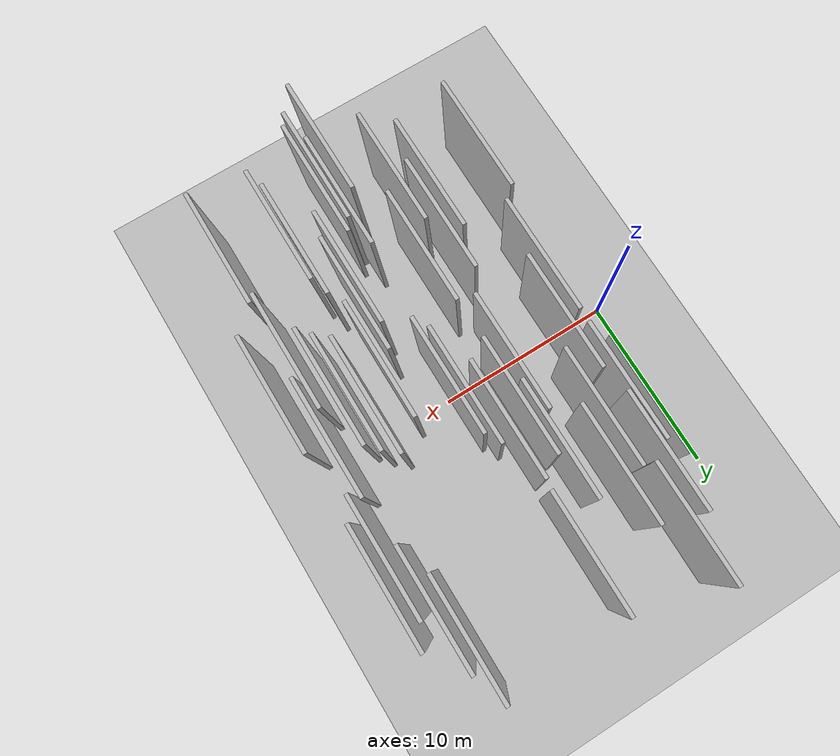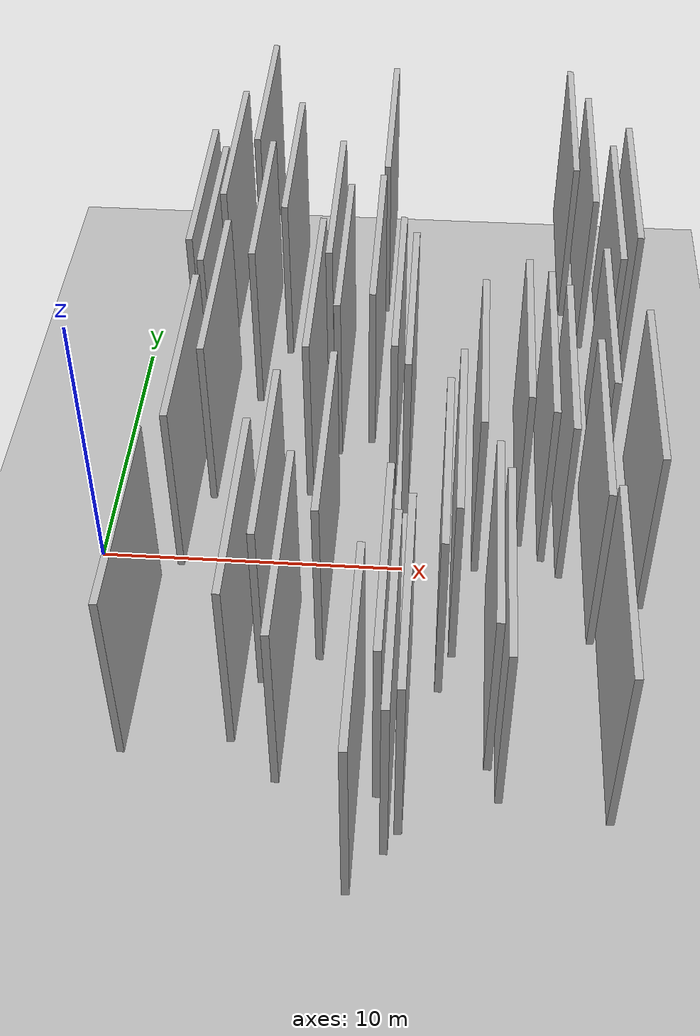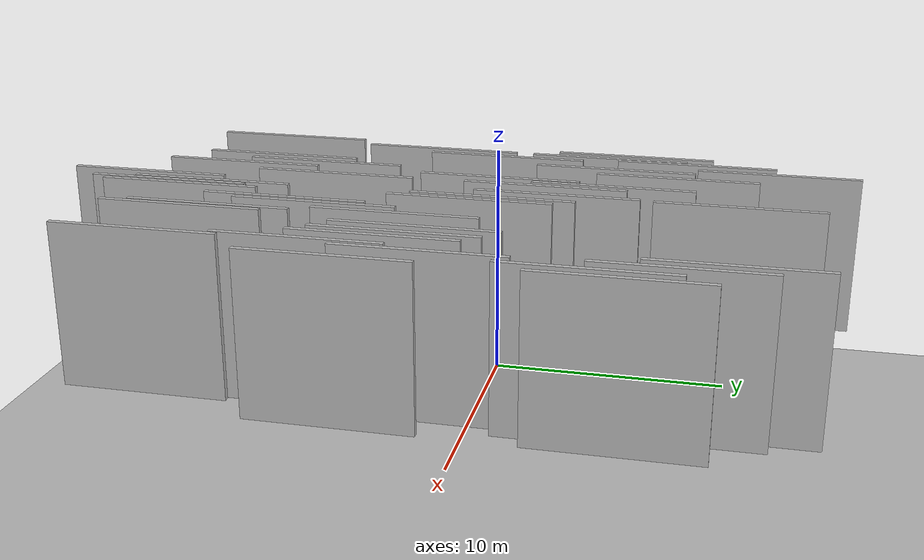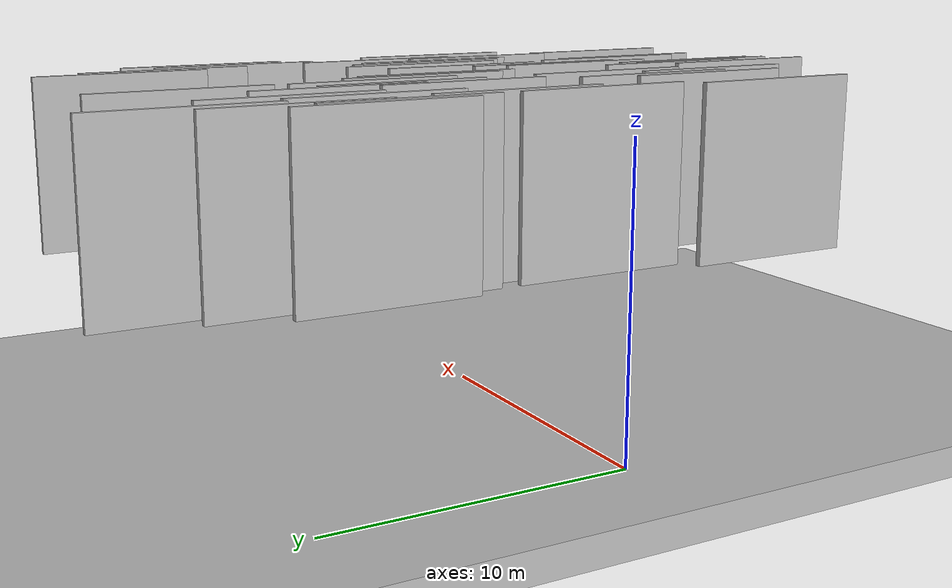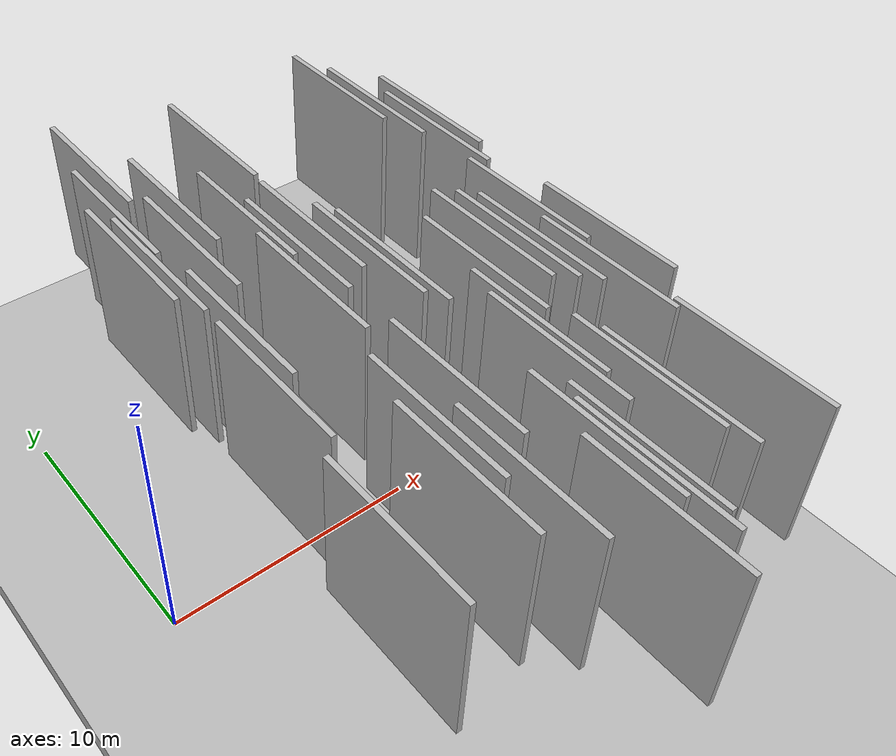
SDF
<?xml version="1.0" encoding="utf-8"?>

<sdf version="1.6">

   <world name="default">

      <gui fullscreen="0">

         <camera name="user_camera">

            <pose>-15 0 4.57585 0 0 0</pose>

            <view_controller>orbit</view_controller>

         </camera>

      </gui>

      <scene>

         <sky>

           <clouds>

             <speed>12</speed>

           </clouds>

         </sky>

         <ambient>0.4 0.4 0.4 1</ambient>

         <background>0.7 0.7 0.7 1</background>

         <shadows>1</shadows>

      </scene>

      <gravity>0 0 -9.8066</gravity>

      <magnetic_field>6e-06 2.3e-05 -4.2e-05</magnetic_field>

      <physics default="0" name="default_physics" type="ode">

         <ode>

            <solver>

               <type>quick</type>

               <iters>10</iters>

               <sor>1.0</sor>

               <use_dynamic_moi_rescaling>0</use_dynamic_moi_rescaling>

            </solver>

            <constraints>

               <cfm>0</cfm>

               <erp>0.2</erp>

               <contact_max_correcting_vel>100</contact_max_correcting_vel>

               <contact_surface_layer>0.001</contact_surface_layer>

            </constraints>

         </ode>

         <max_step_size>0.004</max_step_size>

         <real_time_factor>1</real_time_factor>

         <real_time_update_rate>250</real_time_update_rate>

      </physics>

      <light name="sun" type="directional">

         <cast_shadows>1</cast_shadows>

         <pose>0 0 10 0 0 0</pose>

         <diffuse>0.8 0.8 0.8 1</diffuse>

         <specular>0.2 0.2 0.2 1</specular>

         <attenuation>

            <range>1000</range>

            <constant>0.9</constant>

            <linear>0.01</linear>

            <quadratic>0.001</quadratic>

         </attenuation>

         <direction>-0.5 0.1 -0.9</direction>

      </light>

      <include>

         <name>ground_plane_1</name>

         <uri>model://HANNAS_ground_plane</uri>

         <pose>0 0 0  0 0 0</pose>

      </include>

      <include>

         <name>ground_plane_2</name>

         <uri>model://HANNAS_ground_plane</uri>

         <pose>100 0 0  0 0 0</pose>

      </include>

      <model name="HANNAS_wall_1">

         <static>1</static>

         <pose frame="">14.6508 -1.3126 5.0 0.000000 0.000000 1.570796</pose>

         <link name="link">

            <pose frame="">0 0 3.00 0 0 0</pose>

            <collision name="collision">

               <geometry>

                  <box>

                     <size>6.00 0.2 6.00</size>

                  </box>

               </geometry>

               <max_contacts>10</max_contacts>

               <surface>

                  <contact>

                     <ode/>

                  </contact>

                  <bounce/>

                  <friction>

                     <torsional>

                        <ode/>

                     </torsional>

                     <ode/>

                  </friction>

               </surface>

            </collision>

            <visual name="visual">

               <cast_shadows>0</cast_shadows>

               <geometry>

                  <box>

                     <size>6.00 0.2 6.00</size>

                  </box>

               </geometry>

               <material>

                  <script>

                     <uri>model://HANNAS_wall/materials/scripts</uri>

                     <uri>model://HANNAS_wall/materials/textures</uri>

                     <name>vrc/HANNAS_wall</name>

                  </script>

               </material>

            </visual>

            <self_collide>0</self_collide>

            <enable_wind>0</enable_wind>

            <kinematic>0</kinematic>

         </link>

      </model>

      <model name="HANNAS_wall_2">

         <static>1</static>

         <pose frame="">16.8669 7.0628 5.0 0.000000 0.000000 1.570796</pose>

         <link name="link">

            <pose frame="">0 0 3.00 0 0 0</pose>

            <collision name="collision">

               <geometry>

                  <box>

                     <size>6.00 0.2 6.00</size>

                  </box>

               </geometry>

               <max_contacts>10</max_contacts>

               <surface>

                  <contact>

                     <ode/>

                  </contact>

                  <bounce/>

                  <friction>

                     <torsional>

                        <ode/>

                     </torsional>

                     <ode/>

                  </friction>

               </surface>

            </collision>

            <visual name="visual">

               <cast_shadows>0</cast_shadows>

               <geometry>

                  <box>

                     <size>6.00 0.2 6.00</size>

                  </box>

               </geometry>

               <material>

                  <script>

                     <uri>model://HANNAS_wall/materials/scripts</uri>

                     <uri>model://HANNAS_wall/materials/textures</uri>

                     <name>vrc/HANNAS_wall</name>

                  </script>

               </material>

            </visual>

            <self_collide>0</self_collide>

            <enable_wind>0</enable_wind>

            <kinematic>0</kinematic>

         </link>

      </model>

      <model name="HANNAS_wall_3">

         <static>1</static>

         <pose frame="">9.8406 -8.8659 5.0 0.000000 0.000000 1.570796</pose>

         <link name="link">

            <pose frame="">0 0 3.00 0 0 0</pose>

            <collision name="collision">

               <geometry>

                  <box>

                     <size>6.00 0.2 6.00</size>

                  </box>

               </geometry>

               <max_contacts>10</max_contacts>

               <surface>

                  <contact>

                     <ode/>

                  </contact>

                  <bounce/>

                  <friction>

                     <torsional>

                        <ode/>

                     </torsional>

                     <ode/>

                  </friction>

               </surface>

            </collision>

            <visual name="visual">

               <cast_shadows>0</cast_shadows>

               <geometry>

                  <box>

                     <size>6.00 0.2 6.00</size>

                  </box>

               </geometry>

               <material>

                  <script>

                     <uri>model://HANNAS_wall/materials/scripts</uri>

                     <uri>model://HANNAS_wall/materials/textures</uri>

                     <name>vrc/HANNAS_wall</name>

                  </script>

               </material>

            </visual>

            <self_collide>0</self_collide>

            <enable_wind>0</enable_wind>

            <kinematic>0</kinematic>

         </link>

      </model>

      <model name="HANNAS_wall_4">

         <static>1</static>

         <pose frame="">5.9714 7.9466 5.0 0.000000 0.000000 1.570796</pose>

         <link name="link">

            <pose frame="">0 0 3.00 0 0 0</pose>

            <collision name="collision">

               <geometry>

                  <box>

                     <size>6.00 0.2 6.00</size>

                  </box>

               </geometry>

               <max_contacts>10</max_contacts>

               <surface>

                  <contact>

                     <ode/>

                  </contact>

                  <bounce/>

                  <friction>

                     <torsional>

                        <ode/>

                     </torsional>

                     <ode/>

                  </friction>

               </surface>

            </collision>

            <visual name="visual">

               <cast_shadows>0</cast_shadows>

               <geometry>

                  <box>

                     <size>6.00 0.2 6.00</size>

                  </box>

               </geometry>

               <material>

                  <script>

                     <uri>model://HANNAS_wall/materials/scripts</uri>

                     <uri>model://HANNAS_wall/materials/textures</uri>

                     <name>vrc/HANNAS_wall</name>

                  </script>

               </material>

            </visual>

            <self_collide>0</self_collide>

            <enable_wind>0</enable_wind>

            <kinematic>0</kinematic>

         </link>

      </model>

      <model name="HANNAS_wall_5">

         <static>1</static>

         <pose frame="">7.5330 5.7304 5.0 0.000000 0.000000 1.570796</pose>

         <link name="link">

            <pose frame="">0 0 3.00 0 0 0</pose>

            <collision name="collision">

               <geometry>

                  <box>

                     <size>6.00 0.2 6.00</size>

                  </box>

               </geometry>

               <max_contacts>10</max_contacts>

               <surface>

                  <contact>

                     <ode/>

                  </contact>

                  <bounce/>

                  <friction>

                     <torsional>

                        <ode/>

                     </torsional>

                     <ode/>

                  </friction>

               </surface>

            </collision>

            <visual name="visual">

               <cast_shadows>0</cast_shadows>

               <geometry>

                  <box>

                     <size>6.00 0.2 6.00</size>

                  </box>

               </geometry>

               <material>

                  <script>

                     <uri>model://HANNAS_wall/materials/scripts</uri>

                     <uri>model://HANNAS_wall/materials/textures</uri>

                     <name>vrc/HANNAS_wall</name>

                  </script>

               </material>

            </visual>

            <self_collide>0</self_collide>

            <enable_wind>0</enable_wind>

            <kinematic>0</kinematic>

         </link>

      </model>

      <model name="HANNAS_wall_6">

         <static>1</static>

         <pose frame="">5.2382 5.5553 5.0 0.000000 0.000000 1.570796</pose>

         <link name="link">

            <pose frame="">0 0 3.00 0 0 0</pose>

            <collision name="collision">

               <geometry>

                  <box>

                     <size>6.00 0.2 6.00</size>

                  </box>

               </geometry>

               <max_contacts>10</max_contacts>

               <surface>

                  <contact>

                     <ode/>

                  </contact>

                  <bounce/>

                  <friction>

                     <torsional>

                        <ode/>

                     </torsional>

                     <ode/>

                  </friction>

               </surface>

            </collision>

            <visual name="visual">

               <cast_shadows>0</cast_shadows>

               <geometry>

                  <box>

                     <size>6.00 0.2 6.00</size>

                  </box>

               </geometry>

               <material>

                  <script>

                     <uri>model://HANNAS_wall/materials/scripts</uri>

                     <uri>model://HANNAS_wall/materials/textures</uri>

                     <name>vrc/HANNAS_wall</name>

                  </script>

               </material>

            </visual>

            <self_collide>0</self_collide>

            <enable_wind>0</enable_wind>

            <kinematic>0</kinematic>

         </link>

      </model>

      <model name="HANNAS_wall_7">

         <static>1</static>

         <pose frame="">3.7517 5.1453 5.0 0.000000 0.000000 1.570796</pose>

         <link name="link">

            <pose frame="">0 0 3.00 0 0 0</pose>

            <collision name="collision">

               <geometry>

                  <box>

                     <size>6.00 0.2 6.00</size>

                  </box>

               </geometry>

               <max_contacts>10</max_contacts>

               <surface>

                  <contact>

                     <ode/>

                  </contact>

                  <bounce/>

                  <friction>

                     <torsional>

                        <ode/>

                     </torsional>

                     <ode/>

                  </friction>

               </surface>

            </collision>

            <visual name="visual">

               <cast_shadows>0</cast_shadows>

               <geometry>

                  <box>

                     <size>6.00 0.2 6.00</size>

                  </box>

               </geometry>

               <material>

                  <script>

                     <uri>model://HANNAS_wall/materials/scripts</uri>

                     <uri>model://HANNAS_wall/materials/textures</uri>

                     <name>vrc/HANNAS_wall</name>

                  </script>

               </material>

            </visual>

            <self_collide>0</self_collide>

            <enable_wind>0</enable_wind>

            <kinematic>0</kinematic>

         </link>

      </model>

      <model name="HANNAS_wall_8">

         <static>1</static>

         <pose frame="">4.7043 11.6171 5.0 0.000000 0.000000 1.570796</pose>

         <link name="link">

            <pose frame="">0 0 3.00 0 0 0</pose>

            <collision name="collision">

               <geometry>

                  <box>

                     <size>6.00 0.2 6.00</size>

                  </box>

               </geometry>

               <max_contacts>10</max_contacts>

               <surface>

                  <contact>

                     <ode/>

                  </contact>

                  <bounce/>

                  <friction>

                     <torsional>

                        <ode/>

                     </torsional>

                     <ode/>

                  </friction>

               </surface>

            </collision>

            <visual name="visual">

               <cast_shadows>0</cast_shadows>

               <geometry>

                  <box>

                     <size>6.00 0.2 6.00</size>

                  </box>

               </geometry>

               <material>

                  <script>

                     <uri>model://HANNAS_wall/materials/scripts</uri>

                     <uri>model://HANNAS_wall/materials/textures</uri>

                     <name>vrc/HANNAS_wall</name>

                  </script>

               </material>

            </visual>

            <self_collide>0</self_collide>

            <enable_wind>0</enable_wind>

            <kinematic>0</kinematic>

         </link>

      </model>

      <model name="HANNAS_wall_9">

         <static>1</static>

         <pose frame="">11.3034 -5.5310 5.0 0.000000 0.000000 1.570796</pose>

         <link name="link">

            <pose frame="">0 0 3.00 0 0 0</pose>

            <collision name="collision">

               <geometry>

                  <box>

                     <size>6.00 0.2 6.00</size>

                  </box>

               </geometry>

               <max_contacts>10</max_contacts>

               <surface>

                  <contact>

                     <ode/>

                  </contact>

                  <bounce/>

                  <friction>

                     <torsional>

                        <ode/>

                     </torsional>

                     <ode/>

                  </friction>

               </surface>

            </collision>

            <visual name="visual">

               <cast_shadows>0</cast_shadows>

               <geometry>

                  <box>

                     <size>6.00 0.2 6.00</size>

                  </box>

               </geometry>

               <material>

                  <script>

                     <uri>model://HANNAS_wall/materials/scripts</uri>

                     <uri>model://HANNAS_wall/materials/textures</uri>

                     <name>vrc/HANNAS_wall</name>

                  </script>

               </material>

            </visual>

            <self_collide>0</self_collide>

            <enable_wind>0</enable_wind>

            <kinematic>0</kinematic>

         </link>

      </model>

      <model name="HANNAS_wall_10">

         <static>1</static>

         <pose frame="">9.0481 10.3323 5.0 0.000000 0.000000 1.570796</pose>

         <link name="link">

            <pose frame="">0 0 3.00 0 0 0</pose>

            <collision name="collision">

               <geometry>

                  <box>

                     <size>6.00 0.2 6.00</size>

                  </box>

               </geometry>

               <max_contacts>10</max_contacts>

               <surface>

                  <contact>

                     <ode/>

                  </contact>

                  <bounce/>

                  <friction>

                     <torsional>

                        <ode/>

                     </torsional>

                     <ode/>

                  </friction>

               </surface>

            </collision>

            <visual name="visual">

               <cast_shadows>0</cast_shadows>

               <geometry>

                  <box>

                     <size>6.00 0.2 6.00</size>

                  </box>

               </geometry>

               <material>

                  <script>

                     <uri>model://HANNAS_wall/materials/scripts</uri>

                     <uri>model://HANNAS_wall/materials/textures</uri>

                     <name>vrc/HANNAS_wall</name>

                  </script>

               </material>

            </visual>

            <self_collide>0</self_collide>

            <enable_wind>0</enable_wind>

            <kinematic>0</kinematic>

         </link>

      </model>

      <model name="HANNAS_wall_11">

         <static>1</static>

         <pose frame="">10.1104 -10.4616 5.0 0.000000 0.000000 1.570796</pose>

         <link name="link">

            <pose frame="">0 0 3.00 0 0 0</pose>

            <collision name="collision">

               <geometry>

                  <box>

                     <size>6.00 0.2 6.00</size>

                  </box>

               </geometry>

               <max_contacts>10</max_contacts>

               <surface>

                  <contact>

                     <ode/>

                  </contact>

                  <bounce/>

                  <friction>

                     <torsional>

                        <ode/>

                     </torsional>

                     <ode/>

                  </friction>

               </surface>

            </collision>

            <visual name="visual">

               <cast_shadows>0</cast_shadows>

               <geometry>

                  <box>

                     <size>6.00 0.2 6.00</size>

                  </box>

               </geometry>

               <material>

                  <script>

                     <uri>model://HANNAS_wall/materials/scripts</uri>

                     <uri>model://HANNAS_wall/materials/textures</uri>

                     <name>vrc/HANNAS_wall</name>

                  </script>

               </material>

            </visual>

            <self_collide>0</self_collide>

            <enable_wind>0</enable_wind>

            <kinematic>0</kinematic>

         </link>

      </model>

      <model name="HANNAS_wall_12">

         <static>1</static>

         <pose frame="">12.2276 -1.2199 5.0 0.000000 0.000000 1.570796</pose>

         <link name="link">

            <pose frame="">0 0 3.00 0 0 0</pose>

            <collision name="collision">

               <geometry>

                  <box>

                     <size>6.00 0.2 6.00</size>

                  </box>

               </geometry>

               <max_contacts>10</max_contacts>

               <surface>

                  <contact>

                     <ode/>

                  </contact>

                  <bounce/>

                  <friction>

                     <torsional>

                        <ode/>

                     </torsional>

                     <ode/>

                  </friction>

               </surface>

            </collision>

            <visual name="visual">

               <cast_shadows>0</cast_shadows>

               <geometry>

                  <box>

                     <size>6.00 0.2 6.00</size>

                  </box>

               </geometry>

               <material>

                  <script>

                     <uri>model://HANNAS_wall/materials/scripts</uri>

                     <uri>model://HANNAS_wall/materials/textures</uri>

                     <name>vrc/HANNAS_wall</name>

                  </script>

               </material>

            </visual>

            <self_collide>0</self_collide>

            <enable_wind>0</enable_wind>

            <kinematic>0</kinematic>

         </link>

      </model>

      <model name="HANNAS_wall_13">

         <static>1</static>

         <pose frame="">10.4377 -9.8905 5.0 0.000000 0.000000 1.570796</pose>

         <link name="link">

            <pose frame="">0 0 3.00 0 0 0</pose>

            <collision name="collision">

               <geometry>

                  <box>

                     <size>6.00 0.2 6.00</size>

                  </box>

               </geometry>

               <max_contacts>10</max_contacts>

               <surface>

                  <contact>

                     <ode/>

                  </contact>

                  <bounce/>

                  <friction>

                     <torsional>

                        <ode/>

                     </torsional>

                     <ode/>

                  </friction>

               </surface>

            </collision>

            <visual name="visual">

               <cast_shadows>0</cast_shadows>

               <geometry>

                  <box>

                     <size>6.00 0.2 6.00</size>

                  </box>

               </geometry>

               <material>

                  <script>

                     <uri>model://HANNAS_wall/materials/scripts</uri>

                     <uri>model://HANNAS_wall/materials/textures</uri>

                     <name>vrc/HANNAS_wall</name>

                  </script>

               </material>

            </visual>

            <self_collide>0</self_collide>

            <enable_wind>0</enable_wind>

            <kinematic>0</kinematic>

         </link>

      </model>

      <model name="HANNAS_wall_14">

         <static>1</static>

         <pose frame="">15.6064 8.8356 5.0 0.000000 0.000000 1.570796</pose>

         <link name="link">

            <pose frame="">0 0 3.00 0 0 0</pose>

            <collision name="collision">

               <geometry>

                  <box>

                     <size>6.00 0.2 6.00</size>

                  </box>

               </geometry>

               <max_contacts>10</max_contacts>

               <surface>

                  <contact>

                     <ode/>

                  </contact>

                  <bounce/>

                  <friction>

                     <torsional>

                        <ode/>

                     </torsional>

                     <ode/>

                  </friction>

               </surface>

            </collision>

            <visual name="visual">

               <cast_shadows>0</cast_shadows>

               <geometry>

                  <box>

                     <size>6.00 0.2 6.00</size>

                  </box>

               </geometry>

               <material>

                  <script>

                     <uri>model://HANNAS_wall/materials/scripts</uri>

                     <uri>model://HANNAS_wall/materials/textures</uri>

                     <name>vrc/HANNAS_wall</name>

                  </script>

               </material>

            </visual>

            <self_collide>0</self_collide>

            <enable_wind>0</enable_wind>

            <kinematic>0</kinematic>

         </link>

      </model>

      <model name="HANNAS_wall_15">

         <static>1</static>

         <pose frame="">15.4497 -3.6546 5.0 0.000000 0.000000 1.570796</pose>

         <link name="link">

            <pose frame="">0 0 3.00 0 0 0</pose>

            <collision name="collision">

               <geometry>

                  <box>

                     <size>6.00 0.2 6.00</size>

                  </box>

               </geometry>

               <max_contacts>10</max_contacts>

               <surface>

                  <contact>

                     <ode/>

                  </contact>

                  <bounce/>

                  <friction>

                     <torsional>

                        <ode/>

                     </torsional>

                     <ode/>

                  </friction>

               </surface>

            </collision>

            <visual name="visual">

               <cast_shadows>0</cast_shadows>

               <geometry>

                  <box>

                     <size>6.00 0.2 6.00</size>

                  </box>

               </geometry>

               <material>

                  <script>

                     <uri>model://HANNAS_wall/materials/scripts</uri>

                     <uri>model://HANNAS_wall/materials/textures</uri>

                     <name>vrc/HANNAS_wall</name>

                  </script>

               </material>

            </visual>

            <self_collide>0</self_collide>

            <enable_wind>0</enable_wind>

            <kinematic>0</kinematic>

         </link>

      </model>

      <model name="HANNAS_wall_16">

         <static>1</static>

         <pose frame="">9.2563 -11.5913 5.0 0.000000 0.000000 1.570796</pose>

         <link name="link">

            <pose frame="">0 0 3.00 0 0 0</pose>

            <collision name="collision">

               <geometry>

                  <box>

                     <size>6.00 0.2 6.00</size>

                  </box>

               </geometry>

               <max_contacts>10</max_contacts>

               <surface>

                  <contact>

                     <ode/>

                  </contact>

                  <bounce/>

                  <friction>

                     <torsional>

                        <ode/>

                     </torsional>

                     <ode/>

                  </friction>

               </surface>

            </collision>

            <visual name="visual">

               <cast_shadows>0</cast_shadows>

               <geometry>

                  <box>

                     <size>6.00 0.2 6.00</size>

                  </box>

               </geometry>

               <material>

                  <script>

                     <uri>model://HANNAS_wall/materials/scripts</uri>

                     <uri>model://HANNAS_wall/materials/textures</uri>

                     <name>vrc/HANNAS_wall</name>

                  </script>

               </material>

            </visual>

            <self_collide>0</self_collide>

            <enable_wind>0</enable_wind>

            <kinematic>0</kinematic>

         </link>

      </model>

      <model name="HANNAS_wall_17">

         <static>1</static>

         <pose frame="">15.0598 10.5077 5.0 0.000000 0.000000 1.570796</pose>

         <link name="link">

            <pose frame="">0 0 3.00 0 0 0</pose>

            <collision name="collision">

               <geometry>

                  <box>

                     <size>6.00 0.2 6.00</size>

                  </box>

               </geometry>

               <max_contacts>10</max_contacts>

               <surface>

                  <contact>

                     <ode/>

                  </contact>

                  <bounce/>

                  <friction>

                     <torsional>

                        <ode/>

                     </torsional>

                     <ode/>

                  </friction>

               </surface>

            </collision>

            <visual name="visual">

               <cast_shadows>0</cast_shadows>

               <geometry>

                  <box>

                     <size>6.00 0.2 6.00</size>

                  </box>

               </geometry>

               <material>

                  <script>

                     <uri>model://HANNAS_wall/materials/scripts</uri>

                     <uri>model://HANNAS_wall/materials/textures</uri>

                     <name>vrc/HANNAS_wall</name>

                  </script>

               </material>

            </visual>

            <self_collide>0</self_collide>

            <enable_wind>0</enable_wind>

            <kinematic>0</kinematic>

         </link>

      </model>

      <model name="HANNAS_wall_18">

         <static>1</static>

         <pose frame="">9.7028 1.6760 5.0 0.000000 0.000000 1.570796</pose>

         <link name="link">

            <pose frame="">0 0 3.00 0 0 0</pose>

            <collision name="collision">

               <geometry>

                  <box>

                     <size>6.00 0.2 6.00</size>

                  </box>

               </geometry>

               <max_contacts>10</max_contacts>

               <surface>

                  <contact>

                     <ode/>

                  </contact>

                  <bounce/>

                  <friction>

                     <torsional>

                        <ode/>

                     </torsional>

                     <ode/>

                  </friction>

               </surface>

            </collision>

            <visual name="visual">

               <cast_shadows>0</cast_shadows>

               <geometry>

                  <box>

                     <size>6.00 0.2 6.00</size>

                  </box>

               </geometry>

               <material>

                  <script>

                     <uri>model://HANNAS_wall/materials/scripts</uri>

                     <uri>model://HANNAS_wall/materials/textures</uri>

                     <name>vrc/HANNAS_wall</name>

                  </script>

               </material>

            </visual>

            <self_collide>0</self_collide>

            <enable_wind>0</enable_wind>

            <kinematic>0</kinematic>

         </link>

      </model>

      <model name="HANNAS_wall_19">

         <static>1</static>

         <pose frame="">16.8991 -2.3008 5.0 0.000000 0.000000 1.570796</pose>

         <link name="link">

            <pose frame="">0 0 3.00 0 0 0</pose>

            <collision name="collision">

               <geometry>

                  <box>

                     <size>6.00 0.2 6.00</size>

                  </box>

               </geometry>

               <max_contacts>10</max_contacts>

               <surface>

                  <contact>

                     <ode/>

                  </contact>

                  <bounce/>

                  <friction>

                     <torsional>

                        <ode/>

                     </torsional>

                     <ode/>

                  </friction>

               </surface>

            </collision>

            <visual name="visual">

               <cast_shadows>0</cast_shadows>

               <geometry>

                  <box>

                     <size>6.00 0.2 6.00</size>

                  </box>

               </geometry>

               <material>

                  <script>

                     <uri>model://HANNAS_wall/materials/scripts</uri>

                     <uri>model://HANNAS_wall/materials/textures</uri>

                     <name>vrc/HANNAS_wall</name>

                  </script>

               </material>

            </visual>

            <self_collide>0</self_collide>

            <enable_wind>0</enable_wind>

            <kinematic>0</kinematic>

         </link>

      </model>

      <model name="HANNAS_wall_20">

         <static>1</static>

         <pose frame="">12.6463 -7.8847 5.0 0.000000 0.000000 1.570796</pose>

         <link name="link">

            <pose frame="">0 0 3.00 0 0 0</pose>

            <collision name="collision">

               <geometry>

                  <box>

                     <size>6.00 0.2 6.00</size>

                  </box>

               </geometry>

               <max_contacts>10</max_contacts>

               <surface>

                  <contact>

                     <ode/>

                  </contact>

                  <bounce/>

                  <friction>

                     <torsional>

                        <ode/>

                     </torsional>

                     <ode/>

                  </friction>

               </surface>

            </collision>

            <visual name="visual">

               <cast_shadows>0</cast_shadows>

               <geometry>

                  <box>

                     <size>6.00 0.2 6.00</size>

                  </box>

               </geometry>

               <material>

                  <script>

                     <uri>model://HANNAS_wall/materials/scripts</uri>

                     <uri>model://HANNAS_wall/materials/textures</uri>

                     <name>vrc/HANNAS_wall</name>

                  </script>

               </material>

            </visual>

            <self_collide>0</self_collide>

            <enable_wind>0</enable_wind>

            <kinematic>0</kinematic>

         </link>

      </model>

      <model name="HANNAS_wall_21">

         <static>1</static>

         <pose frame="">3.1263 -7.9421 5.0 0.000000 0.000000 1.570796</pose>

         <link name="link">

            <pose frame="">0 0 3.00 0 0 0</pose>

            <collision name="collision">

               <geometry>

                  <box>

                     <size>6.00 0.2 6.00</size>

                  </box>

               </geometry>

               <max_contacts>10</max_contacts>

               <surface>

                  <contact>

                     <ode/>

                  </contact>

                  <bounce/>

                  <friction>

                     <torsional>

                        <ode/>

                     </torsional>

                     <ode/>

                  </friction>

               </surface>

            </collision>

            <visual name="visual">

               <cast_shadows>0</cast_shadows>

               <geometry>

                  <box>

                     <size>6.00 0.2 6.00</size>

                  </box>

               </geometry>

               <material>

                  <script>

                     <uri>model://HANNAS_wall/materials/scripts</uri>

                     <uri>model://HANNAS_wall/materials/textures</uri>

                     <name>vrc/HANNAS_wall</name>

                  </script>

               </material>

            </visual>

            <self_collide>0</self_collide>

            <enable_wind>0</enable_wind>

            <kinematic>0</kinematic>

         </link>

      </model>

      <model name="HANNAS_wall_22">

         <static>1</static>

         <pose frame="">12.9280 -8.8337 5.0 0.000000 0.000000 1.570796</pose>

         <link name="link">

            <pose frame="">0 0 3.00 0 0 0</pose>

            <collision name="collision">

               <geometry>

                  <box>

                     <size>6.00 0.2 6.00</size>

                  </box>

               </geometry>

               <max_contacts>10</max_contacts>

               <surface>

                  <contact>

                     <ode/>

                  </contact>

                  <bounce/>

                  <friction>

                     <torsional>

                        <ode/>

                     </torsional>

                     <ode/>

                  </friction>

               </surface>

            </collision>

            <visual name="visual">

               <cast_shadows>0</cast_shadows>

               <geometry>

                  <box>

                     <size>6.00 0.2 6.00</size>

                  </box>

               </geometry>

               <material>

                  <script>

                     <uri>model://HANNAS_wall/materials/scripts</uri>

                     <uri>model://HANNAS_wall/materials/textures</uri>

                     <name>vrc/HANNAS_wall</name>

                  </script>

               </material>

            </visual>

            <self_collide>0</self_collide>

            <enable_wind>0</enable_wind>

            <kinematic>0</kinematic>

         </link>

      </model>

      <model name="HANNAS_wall_23">

         <static>1</static>

         <pose frame="">8.9529 3.8747 5.0 0.000000 0.000000 1.570796</pose>

         <link name="link">

            <pose frame="">0 0 3.00 0 0 0</pose>

            <collision name="collision">

               <geometry>

                  <box>

                     <size>6.00 0.2 6.00</size>

                  </box>

               </geometry>

               <max_contacts>10</max_contacts>

               <surface>

                  <contact>

                     <ode/>

                  </contact>

                  <bounce/>

                  <friction>

                     <torsional>

                        <ode/>

                     </torsional>

                     <ode/>

                  </friction>

               </surface>

            </collision>

            <visual name="visual">

               <cast_shadows>0</cast_shadows>

               <geometry>

                  <box>

                     <size>6.00 0.2 6.00</size>

                  </box>

               </geometry>

               <material>

                  <script>

                     <uri>model://HANNAS_wall/materials/scripts</uri>

                     <uri>model://HANNAS_wall/materials/textures</uri>

                     <name>vrc/HANNAS_wall</name>

                  </script>

               </material>

            </visual>

            <self_collide>0</self_collide>

            <enable_wind>0</enable_wind>

            <kinematic>0</kinematic>

         </link>

      </model>

      <model name="HANNAS_wall_24">

         <static>1</static>

         <pose frame="">5.9491 -7.4492 5.0 0.000000 0.000000 1.570796</pose>

         <link name="link">

            <pose frame="">0 0 3.00 0 0 0</pose>

            <collision name="collision">

               <geometry>

                  <box>

                     <size>6.00 0.2 6.00</size>

                  </box>

               </geometry>

               <max_contacts>10</max_contacts>

               <surface>

                  <contact>

                     <ode/>

                  </contact>

                  <bounce/>

                  <friction>

                     <torsional>

                        <ode/>

                     </torsional>

                     <ode/>

                  </friction>

               </surface>

            </collision>

            <visual name="visual">

               <cast_shadows>0</cast_shadows>

               <geometry>

                  <box>

                     <size>6.00 0.2 6.00</size>

                  </box>

               </geometry>

               <material>

                  <script>

                     <uri>model://HANNAS_wall/materials/scripts</uri>

                     <uri>model://HANNAS_wall/materials/textures</uri>

                     <name>vrc/HANNAS_wall</name>

                  </script>

               </material>

            </visual>

            <self_collide>0</self_collide>

            <enable_wind>0</enable_wind>

            <kinematic>0</kinematic>

         </link>

      </model>

      <model name="HANNAS_wall_25">

         <static>1</static>

         <pose frame="">6.5377 -5.5196 5.0 0.000000 0.000000 1.570796</pose>

         <link name="link">

            <pose frame="">0 0 3.00 0 0 0</pose>

            <collision name="collision">

               <geometry>

                  <box>

                     <size>6.00 0.2 6.00</size>

                  </box>

               </geometry>

               <max_contacts>10</max_contacts>

               <surface>

                  <contact>

                     <ode/>

                  </contact>

                  <bounce/>

                  <friction>

                     <torsional>

                        <ode/>

                     </torsional>

                     <ode/>

                  </friction>

               </surface>

            </collision>

            <visual name="visual">

               <cast_shadows>0</cast_shadows>

               <geometry>

                  <box>

                     <size>6.00 0.2 6.00</size>

                  </box>

               </geometry>

               <material>

                  <script>

                     <uri>model://HANNAS_wall/materials/scripts</uri>

                     <uri>model://HANNAS_wall/materials/textures</uri>

                     <name>vrc/HANNAS_wall</name>

                  </script>

               </material>

            </visual>

            <self_collide>0</self_collide>

            <enable_wind>0</enable_wind>

            <kinematic>0</kinematic>

         </link>

      </model>

      <model name="HANNAS_wall_26">

         <static>1</static>

         <pose frame="">7.9653 3.3056 5.0 0.000000 0.000000 1.570796</pose>

         <link name="link">

            <pose frame="">0 0 3.00 0 0 0</pose>

            <collision name="collision">

               <geometry>

                  <box>

                     <size>6.00 0.2 6.00</size>

                  </box>

               </geometry>

               <max_contacts>10</max_contacts>

               <surface>

                  <contact>

                     <ode/>

                  </contact>

                  <bounce/>

                  <friction>

                     <torsional>

                        <ode/>

                     </torsional>

                     <ode/>

                  </friction>

               </surface>

            </collision>

            <visual name="visual">

               <cast_shadows>0</cast_shadows>

               <geometry>

                  <box>

                     <size>6.00 0.2 6.00</size>

                  </box>

               </geometry>

               <material>

                  <script>

                     <uri>model://HANNAS_wall/materials/scripts</uri>

                     <uri>model://HANNAS_wall/materials/textures</uri>

                     <name>vrc/HANNAS_wall</name>

                  </script>

               </material>

            </visual>

            <self_collide>0</self_collide>

            <enable_wind>0</enable_wind>

            <kinematic>0</kinematic>

         </link>

      </model>

      <model name="HANNAS_wall_27">

         <static>1</static>

         <pose frame="">13.4966 -0.1819 5.0 0.000000 0.000000 1.570796</pose>

         <link name="link">

            <pose frame="">0 0 3.00 0 0 0</pose>

            <collision name="collision">

               <geometry>

                  <box>

                     <size>6.00 0.2 6.00</size>

                  </box>

               </geometry>

               <max_contacts>10</max_contacts>

               <surface>

                  <contact>

                     <ode/>

                  </contact>

                  <bounce/>

                  <friction>

                     <torsional>

                        <ode/>

                     </torsional>

                     <ode/>

                  </friction>

               </surface>

            </collision>

            <visual name="visual">

               <cast_shadows>0</cast_shadows>

               <geometry>

                  <box>

                     <size>6.00 0.2 6.00</size>

                  </box>

               </geometry>

               <material>

                  <script>

                     <uri>model://HANNAS_wall/materials/scripts</uri>

                     <uri>model://HANNAS_wall/materials/textures</uri>

                     <name>vrc/HANNAS_wall</name>

                  </script>

               </material>

            </visual>

            <self_collide>0</self_collide>

            <enable_wind>0</enable_wind>

            <kinematic>0</kinematic>

         </link>

      </model>

      <model name="HANNAS_wall_28">

         <static>1</static>

         <pose frame="">11.6434 -4.3331 5.0 0.000000 0.000000 1.570796</pose>

         <link name="link">

            <pose frame="">0 0 3.00 0 0 0</pose>

            <collision name="collision">

               <geometry>

                  <box>

                     <size>6.00 0.2 6.00</size>

                  </box>

               </geometry>

               <max_contacts>10</max_contacts>

               <surface>

                  <contact>

                     <ode/>

                  </contact>

                  <bounce/>

                  <friction>

                     <torsional>

                        <ode/>

                     </torsional>

                     <ode/>

                  </friction>

               </surface>

            </collision>

            <visual name="visual">

               <cast_shadows>0</cast_shadows>

               <geometry>

                  <box>

                     <size>6.00 0.2 6.00</size>

                  </box>

               </geometry>

               <material>

                  <script>

                     <uri>model://HANNAS_wall/materials/scripts</uri>

                     <uri>model://HANNAS_wall/materials/textures</uri>

                     <name>vrc/HANNAS_wall</name>

                  </script>

               </material>

            </visual>

            <self_collide>0</self_collide>

            <enable_wind>0</enable_wind>

            <kinematic>0</kinematic>

         </link>

      </model>

      <model name="HANNAS_wall_29">

         <static>1</static>

         <pose frame="">7.2350 -8.5971 5.0 0.000000 0.000000 1.570796</pose>

         <link name="link">

            <pose frame="">0 0 3.00 0 0 0</pose>

            <collision name="collision">

               <geometry>

                  <box>

                     <size>6.00 0.2 6.00</size>

                  </box>

               </geometry>

               <max_contacts>10</max_contacts>

               <surface>

                  <contact>

                     <ode/>

                  </contact>

                  <bounce/>

                  <friction>

                     <torsional>

                        <ode/>

                     </torsional>

                     <ode/>

                  </friction>

               </surface>

            </collision>

            <visual name="visual">

               <cast_shadows>0</cast_shadows>

               <geometry>

                  <box>

                     <size>6.00 0.2 6.00</size>

                  </box>

               </geometry>

               <material>

                  <script>

                     <uri>model://HANNAS_wall/materials/scripts</uri>

                     <uri>model://HANNAS_wall/materials/textures</uri>

                     <name>vrc/HANNAS_wall</name>

                  </script>

               </material>

            </visual>

            <self_collide>0</self_collide>

            <enable_wind>0</enable_wind>

            <kinematic>0</kinematic>

         </link>

      </model>

      <model name="HANNAS_wall_30">

         <static>1</static>

         <pose frame="">15.7237 -9.2830 5.0 0.000000 0.000000 1.570796</pose>

         <link name="link">

            <pose frame="">0 0 3.00 0 0 0</pose>

            <collision name="collision">

               <geometry>

                  <box>

                     <size>6.00 0.2 6.00</size>

                  </box>

               </geometry>

               <max_contacts>10</max_contacts>

               <surface>

                  <contact>

                     <ode/>

                  </contact>

                  <bounce/>

                  <friction>

                     <torsional>

                        <ode/>

                     </torsional>

                     <ode/>

                  </friction>

               </surface>

            </collision>

            <visual name="visual">

               <cast_shadows>0</cast_shadows>

               <geometry>

                  <box>

                     <size>6.00 0.2 6.00</size>

                  </box>

               </geometry>

               <material>

                  <script>

                     <uri>model://HANNAS_wall/materials/scripts</uri>

                     <uri>model://HANNAS_wall/materials/textures</uri>

                     <name>vrc/HANNAS_wall</name>

                  </script>

               </material>

            </visual>

            <self_collide>0</self_collide>

            <enable_wind>0</enable_wind>

            <kinematic>0</kinematic>

         </link>

      </model>

      <model name="HANNAS_wall_31">

         <static>1</static>

         <pose frame="">10.1138 0.9330 5.0 0.000000 0.000000 1.570796</pose>

         <link name="link">

            <pose frame="">0 0 3.00 0 0 0</pose>

            <collision name="collision">

               <geometry>

                  <box>

                     <size>6.00 0.2 6.00</size>

                  </box>

               </geometry>

               <max_contacts>10</max_contacts>

               <surface>

                  <contact>

                     <ode/>

                  </contact>

                  <bounce/>

                  <friction>

                     <torsional>

                        <ode/>

                     </torsional>

                     <ode/>

                  </friction>

               </surface>

            </collision>

            <visual name="visual">

               <cast_shadows>0</cast_shadows>

               <geometry>

                  <box>

                     <size>6.00 0.2 6.00</size>

                  </box>

               </geometry>

               <material>

                  <script>

                     <uri>model://HANNAS_wall/materials/scripts</uri>

                     <uri>model://HANNAS_wall/materials/textures</uri>

                     <name>vrc/HANNAS_wall</name>

                  </script>

               </material>

            </visual>

            <self_collide>0</self_collide>

            <enable_wind>0</enable_wind>

            <kinematic>0</kinematic>

         </link>

      </model>

      <model name="HANNAS_wall_32">

         <static>1</static>

         <pose frame="">3.7301 -1.5100 5.0 0.000000 0.000000 1.570796</pose>

         <link name="link">

            <pose frame="">0 0 3.00 0 0 0</pose>

            <collision name="collision">

               <geometry>

                  <box>

                     <size>6.00 0.2 6.00</size>

                  </box>

               </geometry>

               <max_contacts>10</max_contacts>

               <surface>

                  <contact>

                     <ode/>

                  </contact>

                  <bounce/>

                  <friction>

                     <torsional>

                        <ode/>

                     </torsional>

                     <ode/>

                  </friction>

               </surface>

            </collision>

            <visual name="visual">

               <cast_shadows>0</cast_shadows>

               <geometry>

                  <box>

                     <size>6.00 0.2 6.00</size>

                  </box>

               </geometry>

               <material>

                  <script>

                     <uri>model://HANNAS_wall/materials/scripts</uri>

                     <uri>model://HANNAS_wall/materials/textures</uri>

                     <name>vrc/HANNAS_wall</name>

                  </script>

               </material>

            </visual>

            <self_collide>0</self_collide>

            <enable_wind>0</enable_wind>

            <kinematic>0</kinematic>

         </link>

      </model>

      <model name="HANNAS_wall_33">

         <static>1</static>

         <pose frame="">8.0347 -4.6547 5.0 0.000000 0.000000 1.570796</pose>

         <link name="link">

            <pose frame="">0 0 3.00 0 0 0</pose>

            <collision name="collision">

               <geometry>

                  <box>

                     <size>6.00 0.2 6.00</size>

                  </box>

               </geometry>

               <max_contacts>10</max_contacts>

               <surface>

                  <contact>

                     <ode/>

                  </contact>

                  <bounce/>

                  <friction>

                     <torsional>

                        <ode/>

                     </torsional>

                     <ode/>

                  </friction>

               </surface>

            </collision>

            <visual name="visual">

               <cast_shadows>0</cast_shadows>

               <geometry>

                  <box>

                     <size>6.00 0.2 6.00</size>

                  </box>

               </geometry>

               <material>

                  <script>

                     <uri>model://HANNAS_wall/materials/scripts</uri>

                     <uri>model://HANNAS_wall/materials/textures</uri>

                     <name>vrc/HANNAS_wall</name>

                  </script>

               </material>

            </visual>

            <self_collide>0</self_collide>

            <enable_wind>0</enable_wind>

            <kinematic>0</kinematic>

         </link>

      </model>

      <model name="HANNAS_wall_34">

         <static>1</static>

         <pose frame="">7.2315 1.4747 5.0 0.000000 0.000000 1.570796</pose>

         <link name="link">

            <pose frame="">0 0 3.00 0 0 0</pose>

            <collision name="collision">

               <geometry>

                  <box>

                     <size>6.00 0.2 6.00</size>

                  </box>

               </geometry>

               <max_contacts>10</max_contacts>

               <surface>

                  <contact>

                     <ode/>

                  </contact>

                  <bounce/>

                  <friction>

                     <torsional>

                        <ode/>

                     </torsional>

                     <ode/>

                  </friction>

               </surface>

            </collision>

            <visual name="visual">

               <cast_shadows>0</cast_shadows>

               <geometry>

                  <box>

                     <size>6.00 0.2 6.00</size>

                  </box>

               </geometry>

               <material>

                  <script>

                     <uri>model://HANNAS_wall/materials/scripts</uri>

                     <uri>model://HANNAS_wall/materials/textures</uri>

                     <name>vrc/HANNAS_wall</name>

                  </script>

               </material>

            </visual>

            <self_collide>0</self_collide>

            <enable_wind>0</enable_wind>

            <kinematic>0</kinematic>

         </link>

      </model>

      <model name="HANNAS_wall_35">

         <static>1</static>

         <pose frame="">14.1454 -0.7212 5.0 0.000000 0.000000 1.570796</pose>

         <link name="link">

            <pose frame="">0 0 3.00 0 0 0</pose>

            <collision name="collision">

               <geometry>

                  <box>

                     <size>6.00 0.2 6.00</size>

                  </box>

               </geometry>

               <max_contacts>10</max_contacts>

               <surface>

                  <contact>

                     <ode/>

                  </contact>

                  <bounce/>

                  <friction>

                     <torsional>

                        <ode/>

                     </torsional>

                     <ode/>

                  </friction>

               </surface>

            </collision>

            <visual name="visual">

               <cast_shadows>0</cast_shadows>

               <geometry>

                  <box>

                     <size>6.00 0.2 6.00</size>

                  </box>

               </geometry>

               <material>

                  <script>

                     <uri>model://HANNAS_wall/materials/scripts</uri>

                     <uri>model://HANNAS_wall/materials/textures</uri>

                     <name>vrc/HANNAS_wall</name>

                  </script>

               </material>

            </visual>

            <self_collide>0</self_collide>

            <enable_wind>0</enable_wind>

            <kinematic>0</kinematic>

         </link>

      </model>

      <model name="HANNAS_wall_36">

         <static>1</static>

         <pose frame="">16.2975 6.0035 5.0 0.000000 0.000000 1.570796</pose>

         <link name="link">

            <pose frame="">0 0 3.00 0 0 0</pose>

            <collision name="collision">

               <geometry>

                  <box>

                     <size>6.00 0.2 6.00</size>

                  </box>

               </geometry>

               <max_contacts>10</max_contacts>

               <surface>

                  <contact>

                     <ode/>

                  </contact>

                  <bounce/>

                  <friction>

                     <torsional>

                        <ode/>

                     </torsional>

                     <ode/>

                  </friction>

               </surface>

            </collision>

            <visual name="visual">

               <cast_shadows>0</cast_shadows>

               <geometry>

                  <box>

                     <size>6.00 0.2 6.00</size>

                  </box>

               </geometry>

               <material>

                  <script>

                     <uri>model://HANNAS_wall/materials/scripts</uri>

                     <uri>model://HANNAS_wall/materials/textures</uri>

                     <name>vrc/HANNAS_wall</name>

                  </script>

               </material>

            </visual>

            <self_collide>0</self_collide>

            <enable_wind>0</enable_wind>

            <kinematic>0</kinematic>

         </link>

      </model>

      <model name="HANNAS_wall_37">

         <static>1</static>

         <pose frame="">3.2741 6.1240 5.0 0.000000 0.000000 1.570796</pose>

         <link name="link">

            <pose frame="">0 0 3.00 0 0 0</pose>

            <collision name="collision">

               <geometry>

                  <box>

                     <size>6.00 0.2 6.00</size>

                  </box>

               </geometry>

               <max_contacts>10</max_contacts>

               <surface>

                  <contact>

                     <ode/>

                  </contact>

                  <bounce/>

                  <friction>

                     <torsional>

                        <ode/>

                     </torsional>

                     <ode/>

                  </friction>

               </surface>

            </collision>

            <visual name="visual">

               <cast_shadows>0</cast_shadows>

               <geometry>

                  <box>

                     <size>6.00 0.2 6.00</size>

                  </box>

               </geometry>

               <material>

                  <script>

                     <uri>model://HANNAS_wall/materials/scripts</uri>

                     <uri>model://HANNAS_wall/materials/textures</uri>

                     <name>vrc/HANNAS_wall</name>

                  </script>

               </material>

            </visual>

            <self_collide>0</self_collide>

            <enable_wind>0</enable_wind>

            <kinematic>0</kinematic>

         </link>

      </model>

      <model name="HANNAS_wall_38">

         <static>1</static>

         <pose frame="">3.9980 8.5221 5.0 0.000000 0.000000 1.570796</pose>

         <link name="link">

            <pose frame="">0 0 3.00 0 0 0</pose>

            <collision name="collision">

               <geometry>

                  <box>

                     <size>6.00 0.2 6.00</size>

                  </box>

               </geometry>

               <max_contacts>10</max_contacts>

               <surface>

                  <contact>

                     <ode/>

                  </contact>

                  <bounce/>

                  <friction>

                     <torsional>

                        <ode/>

                     </torsional>

                     <ode/>

                  </friction>

               </surface>

            </collision>

            <visual name="visual">

               <cast_shadows>0</cast_shadows>

               <geometry>

                  <box>

                     <size>6.00 0.2 6.00</size>

                  </box>

               </geometry>

               <material>

                  <script>

                     <uri>model://HANNAS_wall/materials/scripts</uri>

                     <uri>model://HANNAS_wall/materials/textures</uri>

                     <name>vrc/HANNAS_wall</name>

                  </script>

               </material>

            </visual>

            <self_collide>0</self_collide>

            <enable_wind>0</enable_wind>

            <kinematic>0</kinematic>

         </link>

      </model>

      <model name="HANNAS_wall_39">

         <static>1</static>

         <pose frame="">4.3209 1.1896 5.0 0.000000 0.000000 1.570796</pose>

         <link name="link">

            <pose frame="">0 0 3.00 0 0 0</pose>

            <collision name="collision">

               <geometry>

                  <box>

                     <size>6.00 0.2 6.00</size>

                  </box>

               </geometry>

               <max_contacts>10</max_contacts>

               <surface>

                  <contact>

                     <ode/>

                  </contact>

                  <bounce/>

                  <friction>

                     <torsional>

                        <ode/>

                     </torsional>

                     <ode/>

                  </friction>

               </surface>

            </collision>

            <visual name="visual">

               <cast_shadows>0</cast_shadows>

               <geometry>

                  <box>

                     <size>6.00 0.2 6.00</size>

                  </box>

               </geometry>

               <material>

                  <script>

                     <uri>model://HANNAS_wall/materials/scripts</uri>

                     <uri>model://HANNAS_wall/materials/textures</uri>

                     <name>vrc/HANNAS_wall</name>

                  </script>

               </material>

            </visual>

            <self_collide>0</self_collide>

            <enable_wind>0</enable_wind>

            <kinematic>0</kinematic>

         </link>

      </model>

      <model name="HANNAS_wall_40">

         <static>1</static>

         <pose frame="">15.8174 0.5283 5.0 0.000000 0.000000 1.570796</pose>

         <link name="link">

            <pose frame="">0 0 3.00 0 0 0</pose>

            <collision name="collision">

               <geometry>

                  <box>

                     <size>6.00 0.2 6.00</size>

                  </box>

               </geometry>

               <max_contacts>10</max_contacts>

               <surface>

                  <contact>

                     <ode/>

                  </contact>

                  <bounce/>

                  <friction>

                     <torsional>

                        <ode/>

                     </torsional>

                     <ode/>

                  </friction>

               </surface>

            </collision>

            <visual name="visual">

               <cast_shadows>0</cast_shadows>

               <geometry>

                  <box>

                     <size>6.00 0.2 6.00</size>

                  </box>

               </geometry>

               <material>

                  <script>

                     <uri>model://HANNAS_wall/materials/scripts</uri>

                     <uri>model://HANNAS_wall/materials/textures</uri>

                     <name>vrc/HANNAS_wall</name>

                  </script>

               </material>

            </visual>

            <self_collide>0</self_collide>

            <enable_wind>0</enable_wind>

            <kinematic>0</kinematic>

         </link>

      </model>

   </world>

</sdf>
